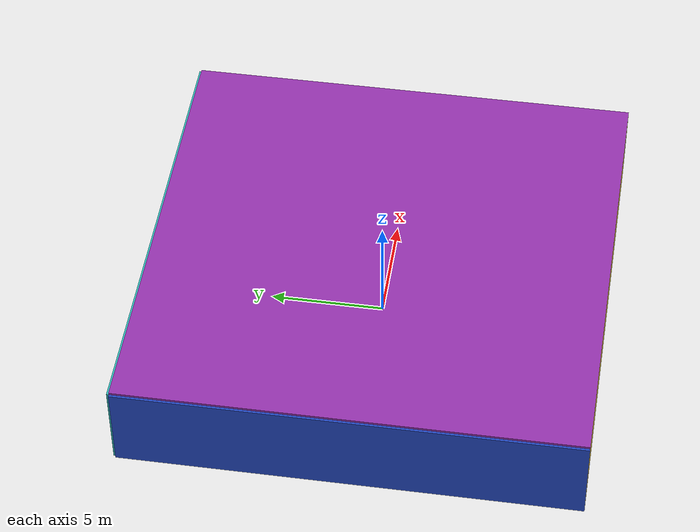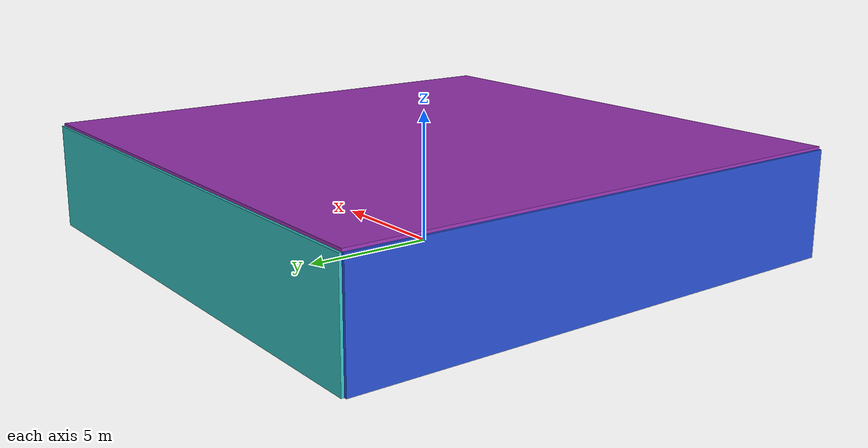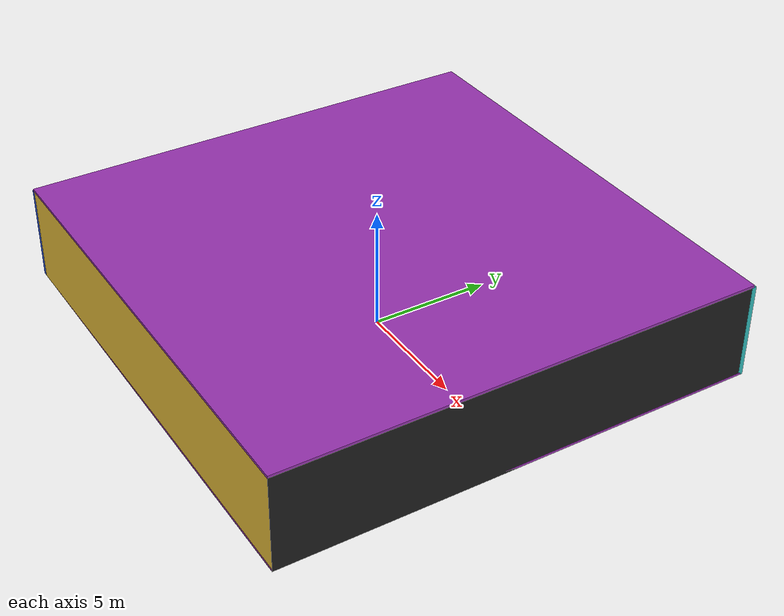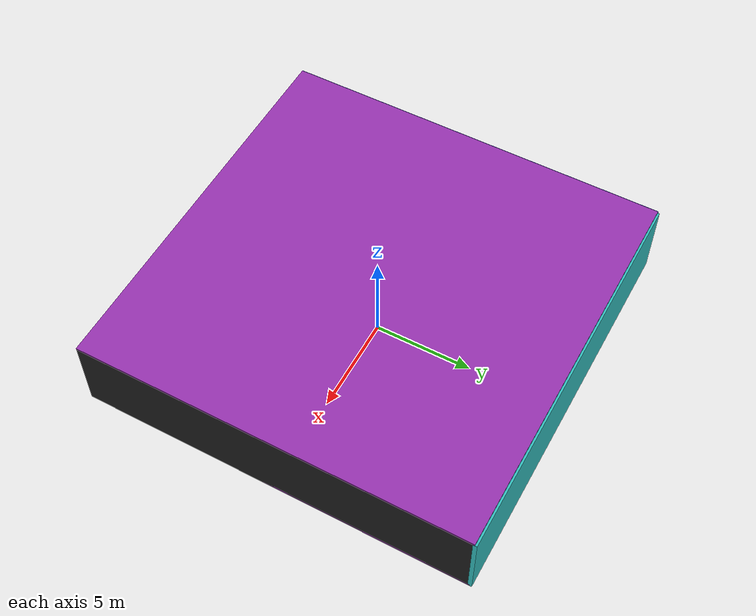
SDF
<sdf version="1.4">
 <world name="default">
  <physics type="ode">
   <max_step_size>0.001</max_step_size>
   <real_time_factor>1</real_time_factor>
   <real_time_update_rate>1000</real_time_update_rate>
   <gravity>0 0 -9.8</gravity>
  </physics>
  <scene><ambient>0.4 0.4 0.4 1</ambient><background>0.7 0.7 0.7 1</background><shadows>1</shadows></scene>
  <model name="Surrounding">
   <static>1</static>
   <link name="Ceiling">
    <collision name="Ceiling_Collision"><geometry><box><size>20 20 0.1</size></box></geometry></collision>
    <visual name="Ceiling_Visual">
     <geometry><box><size>20 20 0.1</size></box></geometry>
     <material>
      <script><uri>file://media/materials/scripts/gazebo.material</uri><name>Gazebo/PurpleGlow</name></script>
     </material>
    </visual>
    <pose>0 0 4.05 0 0 0</pose>
   </link>
   <link name="Wall_South">
    <collision name="Wall_South_Collision">
     <geometry><box><size>20 0 4</size></box></geometry>
     <pose>0 0 2 0 -0 0</pose>
    </collision>
    <visual name="Wall_South_Visual">
     <pose>0 0 2 0 -0 0</pose>
     <geometry><box><size>20 0 4</size></box></geometry>
     <material>
      <script><uri>file://media/materials/scripts/gazebo.material</uri><name>Gazebo/Gold</name></script>
     </material>
    </visual>
    <velocity_decay><linear>0</linear><angular>0</angular></velocity_decay>
    <pose>0 -10 0 0 -0 0</pose>
   </link>
   <link name="Wall_East">
    <collision name="Wall_21_Collision">
     <geometry><box><size>20 0 4</size></box></geometry>
     <pose>0 0 2 0 -0 0</pose>
    </collision>
    <visual name="Wall_21_Visual">
     <pose>0 0 2 0 -0 0</pose>
     <geometry><box><size>20 0 4</size></box></geometry>
     <material>
      <script><uri>file://media/materials/scripts/gazebo.material</uri><name>Gazebo/FlatBlack</name></script>
     </material>
    </visual>
    <velocity_decay><linear>0</linear><angular>0</angular></velocity_decay>
    <pose>10 0 0 0 -0 1.5708</pose>
   </link>
   <link name="Wall_North">
    <collision name="Wall_22_Collision">
     <geometry><box><size>20 0.2 4</size></box></geometry>
     <pose>0 0 2 0 -0 0</pose>
    </collision>
    <visual name="Wall_22_Visual">
     <pose>0 0 2 0 -0 0</pose>
     <geometry><box><size>20 0.2 4</size></box></geometry>
     <material>
      <script>
       <uri>file://media/materials/scripts/gazebo.material</uri>
       <name>Gazebo/TurquoiseGlowOutline</name>
      </script>
     </material>
    </visual>
    <velocity_decay><linear>0</linear><angular>0</angular></velocity_decay>
    <pose>0 10 0 0 -0 0</pose>
   </link>
   <link name="Wall_West">
    <collision name="Wall_23_Collision">
     <geometry><box><size>20 0.2 4</size></box></geometry>
     <pose>0 0 2 0 -0 0</pose>
    </collision>
    <visual name="Wall_23_Visual">
     <pose>0 0 2 0 -0 0</pose>
     <geometry><box><size>20 0.2 4</size></box></geometry>
     <material>
      <script><uri>file://media/materials/scripts/gazebo.material</uri><name>Gazebo/BlueGlow</name></script>
     </material>
    </visual>
    <velocity_decay><linear>0</linear><angular>0</angular></velocity_decay>
    <pose>-10 0 0 0 0 -1.5708</pose>
   </link>
   <link name="Ground_link">
    <collision name="collision">
     <pose>0 0 .05 0 -0 0</pose>
     <geometry><box><size>20 20 0.1</size></box></geometry>
    </collision>
    <visual name="visual">
     <pose>0 0 .05 0 -0 0</pose>
     <geometry><box><size>20 20 0.1</size></box></geometry>
     <material>
      <script><uri>file://media/materials/scripts/gazebo.material</uri><name>Gazebo/Purple</name></script>
     </material>
    </visual>
   </link>
   <static>1</static>
  </model>
  <spherical_coordinates>
   <surface_model>EARTH_WGS84</surface_model>
   <latitude_deg>0</latitude_deg>
   <longitude_deg>0</longitude_deg>
   <elevation>0</elevation>
   <heading_deg>0</heading_deg>
  </spherical_coordinates>
  <light name="lightball_0" type="diffuse">
   <diffuse>0.8 0.8 0.8 1</diffuse>
   <specular>0.2 0.2 0.2 1</specular>
   <attenuation>
    <range>100</range>
    <constant>0.7</constant>
    <linear>0.01</linear>
    <quadratic>0.001</quadratic>
   </attenuation>
   <direction>-0.5 0.1 -0.9</direction>
   <pose>-1.31864761327 -3.89194804464 2.70888364166 0 0 0</pose>
  </light>
  <light name="lightball_1" type="diffuse">
   <diffuse>0.8 0.8 0.8 1</diffuse>
   <specular>0.2 0.2 0.2 1</specular>
   <attenuation>
    <range>100</range>
    <constant>0.7</constant>
    <linear>0.01</linear>
    <quadratic>0.001</quadratic>
   </attenuation>
   <direction>-0.5 0.1 -0.9</direction>
   <pose>6.05095743891 6.82589699919 3.00718951342 0 0 0</pose>
  </light>
  <light name="lightball_2" type="diffuse">
   <diffuse>0.8 0.8 0.8 1</diffuse>
   <specular>0.2 0.2 0.2 1</specular>
   <attenuation>
    <range>100</range>
    <constant>0.7</constant>
    <linear>0.01</linear>
    <quadratic>0.001</quadratic>
   </attenuation>
   <direction>-0.5 0.1 -0.9</direction>
   <pose>7.52651029772 -8.49712042612 2.48491151675 0 0 0</pose>
  </light>
  <light name="lightball_3" type="diffuse">
   <diffuse>0.8 0.8 0.8 1</diffuse>
   <specular>0.2 0.2 0.2 1</specular>
   <attenuation>
    <range>100</range>
    <constant>0.7</constant>
    <linear>0.01</linear>
    <quadratic>0.001</quadratic>
   </attenuation>
   <direction>-0.5 0.1 -0.9</direction>
   <pose>9.66744590447 -0.957999397517 1.2165298099 0 0 0</pose>
  </light>
  <light name="lightball_4" type="diffuse">
   <diffuse>0.8 0.8 0.8 1</diffuse>
   <specular>0.2 0.2 0.2 1</specular>
   <attenuation>
    <range>100</range>
    <constant>0.7</constant>
    <linear>0.01</linear>
    <quadratic>0.001</quadratic>
   </attenuation>
   <direction>-0.5 0.1 -0.9</direction>
   <pose>-5.91039061694 -7.99176244184 2.00322177403 0 0 0</pose>
  </light>
  <light name="lightball_5" type="diffuse">
   <diffuse>0.8 0.8 0.8 1</diffuse>
   <specular>0.2 0.2 0.2 1</specular>
   <attenuation>
    <range>100</range>
    <constant>0.7</constant>
    <linear>0.01</linear>
    <quadratic>0.001</quadratic>
   </attenuation>
   <direction>-0.5 0.1 -0.9</direction>
   <pose>-2.75928230125 -2.27170203113 2.88830332585 0 0 0</pose>
  </light>
  <light name="lightball_6" type="diffuse">
   <diffuse>0.8 0.8 0.8 1</diffuse>
   <specular>0.2 0.2 0.2 1</specular>
   <attenuation>
    <range>100</range>
    <constant>0.7</constant>
    <linear>0.01</linear>
    <quadratic>0.001</quadratic>
   </attenuation>
   <direction>-0.5 0.1 -0.9</direction>
   <pose>-0.387138317652 8.23204268761 2.65898568282 0 0 0</pose>
  </light>
  <light name="lightball_7" type="diffuse">
   <diffuse>0.8 0.8 0.8 1</diffuse>
   <specular>0.2 0.2 0.2 1</specular>
   <attenuation>
    <range>100</range>
    <constant>0.7</constant>
    <linear>0.01</linear>
    <quadratic>0.001</quadratic>
   </attenuation>
   <direction>-0.5 0.1 -0.9</direction>
   <pose>-1.30224351809 -2.81161877284 0.830053465469 0 0 0</pose>
  </light>
  <light name="lightball_8" type="diffuse">
   <diffuse>0.8 0.8 0.8 1</diffuse>
   <specular>0.2 0.2 0.2 1</specular>
   <attenuation>
    <range>100</range>
    <constant>0.7</constant>
    <linear>0.01</linear>
    <quadratic>0.001</quadratic>
   </attenuation>
   <direction>-0.5 0.1 -0.9</direction>
   <pose>6.84623220998 -6.92562429082 3.81872068179 0 0 0</pose>
  </light>
  <light name="lightball_9" type="diffuse">
   <diffuse>0.8 0.8 0.8 1</diffuse>
   <specular>0.2 0.2 0.2 1</specular>
   <attenuation>
    <range>100</range>
    <constant>0.7</constant>
    <linear>0.01</linear>
    <quadratic>0.001</quadratic>
   </attenuation>
   <direction>-0.5 0.1 -0.9</direction>
   <pose>-1.34378535875 4.44225439481 2.33847314001 0 0 0</pose>
  </light>
  <light name="lightball_10" type="diffuse">
   <diffuse>0.8 0.8 0.8 1</diffuse>
   <specular>0.2 0.2 0.2 1</specular>
   <attenuation>
    <range>100</range>
    <constant>0.7</constant>
    <linear>0.01</linear>
    <quadratic>0.001</quadratic>
   </attenuation>
   <direction>-0.5 0.1 -0.9</direction>
   <pose>4.55604442245 2.50538879839 0.706090782588 0 0 0</pose>
  </light>
  <include><uri>model://cabinet</uri><pose>-8.29919995572 4.57286742451 0 0 0 0.419141540096</pose></include>
  <include>
   <uri>model://textured_shapes</uri>
   <pose>-4.79232555298 -6.70798687097 0 0 0 0.722388869815</pose>
  </include>
  <include><uri>model://table</uri><pose>-5.25926694445 4.60508897898 0 0 0 1.89346680221</pose></include>
  <include>
   <uri>model://robocup_3Dsim_goal</uri>
   <pose>-0.955553718422 -7.16766259723 0 0 0 0.232877364295</pose>
  </include>
  <include><uri>model://table</uri><pose>0.98079778894 -4.3595989208 0 0 0 0.179628795266</pose></include>
  <include>
   <uri>model://construction_cone</uri>
   <pose>2.17820375388 0.98515876749 0 0 0 2.86229248179</pose>
  </include>
  <include>
   <uri>model://robocup_3Dsim_goal</uri>
   <pose>4.75271465961 -1.2513895689 0 0 0 1.25397913237</pose>
  </include>
  <include>
   <uri>model://textured_shapes</uri>
   <pose>4.60468638463 1.76200244391 0 0 0 1.82579700466</pose>
  </include>
  <include><uri>model://cabinet</uri><pose>8.07860283822 4.30771306371 0 0 0 0.542300738231</pose></include>
 </world>
</sdf>

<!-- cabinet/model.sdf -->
<sdf version="1.5">
  <model name="cabinet">
    <static>true</static>
    <link name="cabinet_bottom_plate">
      <inertial>
        <pose>0 0 -1 0 0 0</pose>
        <inertia>
          <ixx>2.050000</ixx>
          <ixy>0</ixy>
          <ixz>0</ixz>
          <iyy>2.050000</iyy>
          <iyz>0</iyz>
          <izz>2.050000</izz>
        </inertia>
        <mass>25.000000</mass>
      </inertial>
      <collision name="cabinet_bottom_plate_geom">
        <pose>0 0 0.010000 0 0 0</pose>
        <geometry>
          <box>
            <size>0.450000 0.450000 0.020000</size>
          </box>
        </geometry>
      </collision>
      <visual name="cabinet_bottom_plate_geom_visual">
        <pose>0 0 0.010000 0 0 0</pose>
        <geometry>
          <box>
            <size>0.450000 0.450000 0.020000</size>
          </box>
        </geometry>
        <material>
          <script>
            <uri>model://media/materials/scripts/gazebo.material</uri>
            <name>Gazebo/Wood</name>
          </script>
        </material>
      </visual>
      <collision name="cabinet_bottom_plate_geom_cabinet_back_plate">
        <pose>0.235000 0 0.510000 0 0 0</pose>
        <geometry>
          <box>
            <size>0.020000 0.450000 1.020000</size>
          </box>
        </geometry>
      </collision>
      <visual name="cabinet_bottom_plate_geom_cabinet_back_plate_visual">
        <pose>0.235000 0 0.510000 0 0 0</pose>
        <geometry>
          <box>
            <size>0.020000 0.450000 1.020000</size>
          </box>
        </geometry>
        <material>
          <script>
            <uri>model://media/materials/scripts/gazebo.material</uri>
            <name>Gazebo/Wood</name>
          </script>
        </material>
      </visual>
      <collision name="cabinet_bottom_plate_geom_cabinet_left_plate">
        <pose>0 0.235000 0.510000 0 0 0</pose>
        <geometry>
          <box>
            <size>0.450000 0.020000 1.020000</size>
          </box>
        </geometry>
      </collision>
      <visual name="cabinet_bottom_plate_geom_cabinet_left_plate_visual">
        <pose>0 0.235000 0.510000 0 0 0</pose>
        <geometry>
          <box>
            <size>0.450000 0.020000 1.020000</size>
          </box>
        </geometry>
        <material>
          <script>
            <uri>model://media/materials/scripts/gazebo.material</uri>
            <name>Gazebo/Wood</name>
          </script>
        </material>
      </visual>
      <collision name="cabinet_bottom_plate_geom_cabinet_middle_plate">
        <pose>0 0 0.510000 0 0 0</pose>
        <geometry>
          <box>
            <size>0.450000 0.450000 0.020000</size>
          </box>
        </geometry>
      </collision>
      <visual name="cabinet_bottom_plate_geom_cabinet_middle_plate_visual">
        <pose>0 0 0.510000 0 0 0</pose>
        <geometry>
          <box>
            <size>0.450000 0.450000 0.020000</size>
          </box>
        </geometry>
        <material>
          <script>
            <uri>model://media/materials/scripts/gazebo.material</uri>
            <name>Gazebo/Wood</name>
          </script>
        </material>
      </visual>
      <collision name="cabinet_bottom_plate_geom_cabinet_right_plate">
        <pose>0 -0.235000 0.510000 0 0 0</pose>
        <geometry>
          <box>
            <size>0.450000 0.020000 1.020000</size>
          </box>
        </geometry>
      </collision>
      <visual name="cabinet_bottom_plate_geom_cabinet_right_plate_visual">
        <pose>0 -0.235000 0.510000 0 0 0</pose>
        <geometry>
          <box>
            <size>0.450000 0.020000 1.020000</size>
          </box>
        </geometry>
        <material>
          <script>
            <uri>model://media/materials/scripts/gazebo.material</uri>
            <name>Gazebo/Wood</name>
          </script>
        </material>
      </visual>
      <collision name="cabinet_bottom_plate_geom_cabinet_top_plate">
        <pose>0 0 1.010000 0 0 0</pose>
        <geometry>
          <box>
            <size>0.450000 0.450000 0.020000</size>
          </box>
        </geometry>
      </collision>
      <visual name="cabinet_bottom_plate_geom_cabinet_top_plate_visual">
        <pose>0 0 1.010000 0 0 0</pose>
        <geometry>
          <box>
            <size>0.450000 0.450000 0.020000</size>
          </box>
        </geometry>
        <material>
          <script>
            <uri>model://media/materials/scripts/gazebo.material</uri>
            <name>Gazebo/Wood</name>
          </script>
        </material>
      </visual>
    </link>
  </model>
</sdf>

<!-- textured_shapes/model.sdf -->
<sdf version="1.6">
  <model name="textured_shapes">
    <pose>0 0 0.5 0 0 0</pose>
    <link name="box">
      <pose>0 -1.5 0 0 0 0</pose>
      <collision name="collision">
        <geometry>
          <box>
            <size>1 1 1</size>
          </box>
        </geometry>
      </collision>
      <visual name="visual">
        <geometry>
          <box>
            <size>1 1 1</size>
          </box>
        </geometry>
        <material>
          <script>
            <uri>model://../model_source/models/textured_shapes/materials/scripts</uri>
            <uri>model://../model_source/models/textured_shapes/materials/textures</uri>
            <name>TexturedShape/Squares</name>
          </script>
        </material>
      </visual>
    </link>
    <link name="sphere">
      <collision name="collision">
        <geometry>
          <sphere>
            <radius>0.5</radius>
          </sphere>
        </geometry>
      </collision>
      <visual name="visual">
        <geometry>
          <sphere>
            <radius>0.5</radius>
          </sphere>
        </geometry>
        <material>
          <script>
            <uri>model://../model_source/models/textured_shapes/materials/scripts</uri>
            <uri>model://../model_source/models/textured_shapes/materials/textures</uri>
            <name>TexturedShape/Squares</name>
          </script>
        </material>
      </visual>
    </link>
    <link name="cylinder">
      <pose>0 1.5 0 0 0 0</pose>
      <collision name="collision">
        <geometry>
          <cylinder>
            <radius>0.5</radius>
            <length>1</length>
          </cylinder>
        </geometry>
      </collision>
      <visual name="visual">
        <geometry>
          <cylinder>
            <radius>0.5</radius>
            <length>1</length>
          </cylinder>
        </geometry>
        <material>
          <script>
            <uri>model://../model_source/models/textured_shapes/materials/scripts</uri>
            <uri>model://../model_source/models/textured_shapes/materials/textures</uri>
            <name>TexturedShape/Squares</name>
          </script>
        </material>
      </visual>
    </link>
  </model>
</sdf>

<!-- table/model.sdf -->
<sdf version="1.5">
  <model name="table">
    <static>true</static>
    <link name="link">
      <collision name="surface">
        <pose>0 0 1.0 0 0 0</pose>
        <geometry>
          <box>
            <size>1.5 0.8 0.03</size>
          </box>
        </geometry>
        <surface>
          <friction>
            <ode>
              <mu>0.6</mu>
              <mu2>0.6</mu2>
            </ode>
          </friction>
        </surface>
      </collision>
      <visual name="visual1">
        <pose>0 0 1.0 0 0 0</pose>
        <geometry>
          <box>
            <size>1.5 0.8 0.03</size>
          </box>
        </geometry>
        <material>
          <script>
            <uri>model://media/materials/scripts/gazebo.material</uri>
            <name>Gazebo/Wood</name>
          </script>
        </material>
      </visual>
      <collision name="front_left_leg">
        <pose>0.68 0.38 0.5 0 0 0</pose>
        <geometry>
          <cylinder>
            <radius>0.02</radius>
            <length>1.0</length>
          </cylinder>
        </geometry>
      </collision>
      <visual name="front_left_leg">
        <pose>0.68 0.38 0.5 0 0 0</pose>
        <geometry>
          <cylinder>
            <radius>0.02</radius>
            <length>1.0</length>
          </cylinder>
        </geometry>
        <material>
          <script>
            <uri>model://media/materials/scripts/gazebo.material</uri>
            <name>Gazebo/Grey</name>
          </script>
        </material>
      </visual>
      <collision name="front_right_leg">
        <pose>0.68 -0.38 0.5 0 0 0</pose>
        <geometry>
          <cylinder>
            <radius>0.02</radius>
            <length>1.0</length>
          </cylinder>
        </geometry>
      </collision>
      <visual name="front_right_leg">
        <pose>0.68 -0.38 0.5 0 0 0</pose>
        <geometry>
          <cylinder>
            <radius>0.02</radius>
            <length>1.0</length>
          </cylinder>
        </geometry>
        <material>
          <script>
            <uri>model://media/materials/scripts/gazebo.material</uri>
            <name>Gazebo/Grey</name>
          </script>
        </material>
      </visual>
      <collision name="back_right_leg">
        <pose>-0.68 -0.38 0.5 0 0 0</pose>
        <geometry>
          <cylinder>
            <radius>0.02</radius>
            <length>1.0</length>
          </cylinder>
        </geometry>
      </collision>
      <visual name="back_right_leg">
        <pose>-0.68 -0.38 0.5 0 0 0</pose>
        <geometry>
          <cylinder>
            <radius>0.02</radius>
            <length>1.0</length>
          </cylinder>
        </geometry>
        <material>
          <script>
            <uri>model://media/materials/scripts/gazebo.material</uri>
            <name>Gazebo/Grey</name>
          </script>
        </material>
      </visual>
      <collision name="back_left_leg">
        <pose>-0.68 0.38 0.5 0 0 0</pose>
        <geometry>
          <cylinder>
            <radius>0.02</radius>
            <length>1.0</length>
          </cylinder>
        </geometry>
      </collision>
      <visual name="back_left_leg">
        <pose>-0.68 0.38 0.5 0 0 0</pose>
        <geometry>
          <cylinder>
            <radius>0.02</radius>
            <length>1.0</length>
          </cylinder>
        </geometry>
        <material>
          <script>
            <uri>model://media/materials/scripts/gazebo.material</uri>
            <name>Gazebo/Grey</name>
          </script>
        </material>
      </visual>
    </link>
  </model>
</sdf>

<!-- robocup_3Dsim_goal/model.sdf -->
<sdf version="1.5">
  <model name="robocup_3d_goal">
    <static>true</static>
    <link name="left_post">
      <pose>0 1.05 0.45 0 0 0</pose>
      <collision name="collision">
        <geometry>
          <cylinder>
            <radius>0.05</radius>
            <length>0.9</length>
          </cylinder>
        </geometry>
      </collision>
      <visual name="visual">
        <geometry>
          <cylinder>
            <radius>0.05</radius>
            <length>0.9</length>
          </cylinder>
        </geometry>
        <material>
          <script>
            <uri>file://media/materials/scripts/gazebo.material</uri>
            <name>Gazebo/ZincYellow</name>
          </script>
        </material>
      </visual>
    </link>
    <link name="left_support_horiz_lower">
      <pose>0.30 1.05 0.01 0 0 0</pose>
      <collision name="collision">
        <geometry>
          <box>
            <size>0.50 0.02 0.02</size>
          </box>
        </geometry>
      </collision>
      <visual name="visual">
        <geometry>
          <box>
            <size>0.50 0.02 0.02</size>
          </box>
        </geometry>
        <material>
          <script>
            <uri>file://media/materials/scripts/gazebo.material</uri>
            <name>Gazebo/White</name>
          </script>
        </material>
      </visual>
    </link>
    <link name="left_support_horiz_upper">
      <pose>0.30 1.05 0.79 0 0 0</pose>
      <collision name="collision">
        <geometry>
          <box>
            <size>0.50 0.02 0.02</size>
          </box>
        </geometry>
      </collision>
      <visual name="visual">
        <geometry>
          <box>
            <size>0.50 0.02 0.02</size>
          </box>
        </geometry>
        <material>
          <script>
            <uri>file://media/materials/scripts/gazebo.material</uri>
            <name>Gazebo/White</name>
          </script>
        </material>
      </visual>
    </link>
    <link name="left_support_vertical">
      <pose>0.56 1.05 0.4 0 1.5708 0</pose>
      <collision name="collision">
        <geometry>
          <box>
            <size>0.80 0.02 0.02</size>
          </box>
        </geometry>
      </collision>
      <visual name="visual">
        <geometry>
          <box>
            <size>0.80 0.02 0.02</size>
          </box>
        </geometry>
        <material>
          <script>
            <uri>file://media/materials/scripts/gazebo.material</uri>
            <name>Gazebo/White</name>
          </script>
        </material>
      </visual>
    </link>
    <link name="right_support_horiz_lower">
      <pose>0.30 -1.05 0.01 0 0 0</pose>
      <collision name="collision">
        <geometry>
          <box>
            <size>0.50 0.02 0.02</size>
          </box>
        </geometry>
      </collision>
      <visual name="visual">
        <geometry>
          <box>
            <size>0.50 0.02 0.02</size>
          </box>
        </geometry>
        <material>
          <script>
            <uri>file://media/materials/scripts/gazebo.material</uri>
            <name>Gazebo/White</name>
          </script>
        </material>
      </visual>
    </link>
    <link name="right_support_horiz_upper">
      <pose>0.30 -1.05 0.79 0 0 0</pose>
      <collision name="collision">
        <geometry>
          <box>
            <size>0.50 0.02 0.02</size>
          </box>
        </geometry>
      </collision>
      <visual name="visual">
        <geometry>
          <box>
            <size>0.50 0.02 0.02</size>
          </box>
        </geometry>
        <material>
          <script>
            <uri>file://media/materials/scripts/gazebo.material</uri>
            <name>Gazebo/White</name>
          </script>
        </material>
      </visual>
    </link>
    <link name="right_support_vertical">
      <pose>0.56 -1.05 0.4 0 1.5708 0</pose>
      <collision name="collision">
        <geometry>
          <box>
            <size>0.80 0.02 0.02</size>
          </box>
        </geometry>
      </collision>
      <visual name="visual">
        <geometry>
          <box>
            <size>0.80 0.02 0.02</size>
          </box>
        </geometry>
        <material>
          <script>
            <uri>file://media/materials/scripts/gazebo.material</uri>
            <name>Gazebo/White</name>
          </script>
        </material>
      </visual>
    </link>
    <link name="center_support_horiz_lower">
      <pose>0.56 0 0.01 0 1.5708 0</pose>
      <collision name="collision">
        <geometry>
          <box>
            <size>0.02 2.08 0.02</size>
          </box>
        </geometry>
      </collision>
      <visual name="visual">
        <geometry>
          <box>
            <size>0.02 2.08 0.02</size>
          </box>
        </geometry>
        <material>
          <script>
            <uri>file://media/materials/scripts/gazebo.material</uri>
            <name>Gazebo/White</name>
          </script>
        </material>
      </visual>
    </link>
    <link name="center_support_horiz_upper">
      <pose>0.56 0 0.79 0 1.5708 0</pose>
      <collision name="collision">
        <geometry>
          <box>
            <size>0.02 2.08 0.02</size>
          </box>
        </geometry>
      </collision>
      <visual name="visual">
        <geometry>
          <box>
            <size>0.02 2.08 0.02</size>
          </box>
        </geometry>
        <material>
          <script>
            <uri>file://media/materials/scripts/gazebo.material</uri>
            <name>Gazebo/White</name>
          </script>
        </material>
      </visual>
    </link>
    <link name="right_post">
      <pose>0 -1.05 0.45 0 0 0</pose>
      <collision name="collision">
        <geometry>
          <cylinder>
            <radius>0.05</radius>
            <length>0.9</length>
          </cylinder>
        </geometry>
      </collision>
      <visual name="visual">
        <geometry>
          <cylinder>
            <radius>0.05</radius>
            <length>0.9</length>
          </cylinder>
        </geometry>
        <material>
          <script>
            <uri>file://media/materials/scripts/gazebo.material</uri>
            <name>Gazebo/ZincYellow</name>
          </script>
        </material>
      </visual>
    </link>
    <link name="crossbar">
      <pose>0 0 0.85 1.57 1.57 0</pose>
      <collision name="collision">
        <geometry>
          <cylinder>
            <radius>0.05</radius>
            <length>2.0</length>
          </cylinder>
        </geometry>
      </collision>
      <visual name="visual">
        <geometry>
          <cylinder>
            <radius>0.05</radius>
            <length>2.0</length>
          </cylinder>
        </geometry>
        <material>
          <script>
            <uri>file://media/materials/scripts/gazebo.material</uri>
            <name>Gazebo/ZincYellow</name>
          </script>
        </material>
      </visual>
    </link>
    <link name="center_net">
      <pose>0.56 0 0.40 0 0 0</pose>
      <collision name="collision">
        <geometry>
          <box>
            <size>0.01 2.1 0.80</size>
          </box>
        </geometry>
      </collision>
      <visual name="visual">
        <geometry>
          <box>
            <size>0.01 2.1 0.80</size>
          </box>
        </geometry>
        <material>
          <script>
            <uri>model://../model_source/models/robocup09_spl_field/materials/scripts/</uri>
            <uri>model://../model_source/models/robocup09_spl_field/materials/textures/</uri>
            <name>RoboCup/Net</name>
          </script>
        </material>
      </visual>
    </link>
    <link name="left_net">
      <pose>0.30 1.05 0.40 0 0 0</pose>
      <collision name="collision">
        <geometry>
          <box>
            <size>0.50 0.01 0.76</size>
          </box>
        </geometry>
      </collision>
      <visual name="visual">
        <geometry>
          <box>
            <size>0.50 0.01 0.76</size>
          </box>
        </geometry>
        <material>
          <script>
            <uri>model://../model_source/models/robocup09_spl_field/materials/scripts/</uri>
            <uri>model://../model_source/models/robocup09_spl_field/materials/textures/</uri>
            <name>RoboCup/Net</name>
          </script>
        </material>
      </visual>
    </link>
    <link name="right_net">
      <pose>0.30 -1.05 0.40 0 0 0</pose>
      <collision name="collision">
        <geometry>
          <box>
            <size>0.50 0.01 0.76</size>
          </box>
        </geometry>
      </collision>
      <visual name="visual">
        <geometry>
          <box>
            <size>0.50 0.01 0.76</size>
          </box>
        </geometry>
        <material>
          <script>
            <uri>model://../model_source/models/robocup09_spl_field/materials/scripts/</uri>
            <uri>model://../model_source/models/robocup09_spl_field/materials/textures/</uri>
            <name>RoboCup/Net</name>
          </script>
        </material>
      </visual>
    </link>
  </model>
</sdf>

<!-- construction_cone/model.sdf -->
<sdf version="1.5">
  <model name="Construction Cone">
    <link name="link">
      <collision name="collision">
        <geometry>
          <mesh>
            <scale>10 10 10</scale>
            <uri>file://isr-testbed/construction_cone/meshes/construction_cone.dae</uri>
          </mesh>
        </geometry>
      </collision>
      <visual name="visual">
        <geometry>
          <mesh>
            <scale>10 10 10</scale>
            <uri>file://isr-testbed/construction_cone/meshes/construction_cone.dae</uri>
          </mesh>
        </geometry>
      </visual>
    </link>
  </model>
</sdf>
